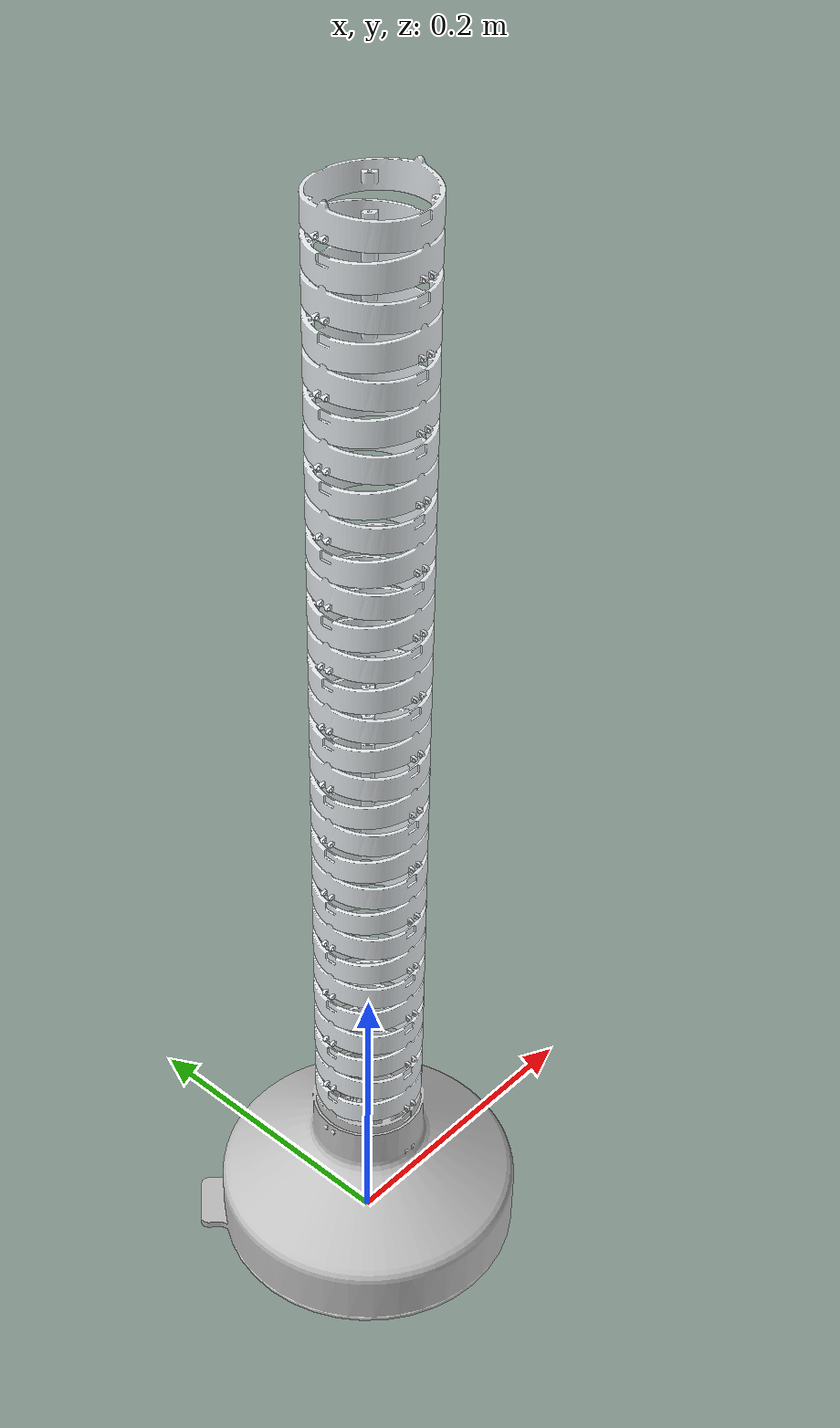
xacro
<?xml version="1.0"?>
<robot name="snake_robot1" xmlns:xacro="http://ros.org/wiki/xacro">
  <xacro:include filename="$(find snake_robot1)/urdf/snake_robot1.xacro" />

  <link name="base_link" />
  <xacro:snake_robot1 parent="base_link" name="snake_robot1" base_joint_type="fixed">
    <origin xyz="0 0 0" rpy="0 0 0"/>
  </xacro:snake_robot1>

</robot>

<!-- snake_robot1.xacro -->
<robot name="snake_robot1" xmlns:xacro="http://ros.org/wiki/xacro">
  <xacro:include filename="$(find snake_robot1)/urdf/base_rail1.xacro" />

  <xacro:macro name="snake_robot1" params="parent *origin name:=snake_robot1 base_joint_type:=prismatic">

    <xacro:base1 parent="${parent}" name="base1" base_joint_type="${base_joint_type}">
      <xacro:insert_block name="origin" />
    </xacro:base1>

    <xacro:rail1 parent="base1_link" name="rail1_1">
      <origin xyz="0 0 0.1235" rpy="0 0 0"/>
    </xacro:rail1>

    <xacro:rail1 parent="rail1_1_link5" name="rail1_2" >
      <origin xyz="0 0 0.021" rpy="0 0 1.57"/>
    </xacro:rail1>

    <xacro:rail1 parent="rail1_2_link5" name="rail1_3" >
      <origin xyz="0 0 0.021" rpy="0 0 1.57"/>
    </xacro:rail1>

    <xacro:rail1 parent="rail1_3_link5" name="rail1_4" >
      <origin xyz="0 0 0.021" rpy="0 0 1.57"/>
    </xacro:rail1>

    <xacro:rail1 parent="rail1_4_link5" name="rail1_5" >
      <origin xyz="0 0 0.021" rpy="0 0 1.57"/>
    </xacro:rail1>

    <xacro:rail1 parent="rail1_5_link5" name="rail1_6" >
      <origin xyz="0 0 0.021" rpy="0 0 1.57"/>
    </xacro:rail1>
  </xacro:macro>

</robot>

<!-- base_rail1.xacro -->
<robot xmlns:xacro="http://www.ros.org/wiki/xacro" name="base_rail1">
    <xacro:macro name="base1" params="parent *origin name:=base base_joint_type:=prismatic">
        <link
            name="${name}_link">
            <visual>
            <origin
                xyz="0 0 0"
                rpy="0 0 0" />
            <geometry>
                <mesh
                filename="package://snake_robot1/meshes/base_link.STL" />
            </geometry>
            <material
                name="">
                <color
                rgba="0.75294 0.75294 0.75294 1" />
            </material>
            </visual>
            <collision>
            <origin
                xyz="0 0 0"
                rpy="0 0 0" />
            <geometry>
                <mesh
                filename="package://snake_robot1/meshes/base_link.STL" />
            </geometry>
            </collision>
        </link>
        <joint
        name="${name}_joint"
        type="${base_joint_type}">
        <xacro:insert_block name="origin" />
        <parent
            link="${parent}" />
        <child
            link="${name}_link" />
        <axis
            xyz="0 0 1" />
        <limit
        lower="-0.5"
        upper="0.5"
        effort="0"
        velocity="0" />
        </joint>
    </xacro:macro>

    <xacro:macro name="rail1" params="parent *origin name:=rail">
        <link
        name="${name}_link1">
        <inertial>
        <origin
            xyz="7.2882E-09 3.4329E-09 0.010539"
            rpy="0 0 0" />
        <mass
            value="0.024744" />
        <inertia
            ixx="1.4926E-05"
            ixy="-1.6133E-09"
            ixz="2.3902E-13"
            iyy="1.4062E-05"
            iyz="-9.0592E-13"
            izz="2.7906E-05" />
        </inertial>
        <visual>
        <origin
            xyz="0 0 0"
            rpy="0 0 0" />
        <geometry>
            <mesh
            filename="package://snake_robot1/meshes/link1.STL" />
        </geometry>
        <material
            name="">
            <color
            rgba="0.89804 0.91765 0.92941 1" />
        </material>
        </visual>
        <collision>
        <origin
            xyz="0 0 0"
            rpy="0 0 0" />
        <geometry>
            <mesh
            filename="package://snake_robot1/meshes/link1.STL" />
        </geometry>
        </collision>
    </link>
    <joint
        name="${name}_joint1"
        type="revolute">
        <xacro:insert_block name="origin" />
        <parent
        link="${parent}" />
        <child
        link="${name}_link1" />
        <axis
        xyz="-1 0 0" />
        <limit
        lower="-0.17"
        upper="0.17"
        effort="0"
        velocity="0" />
    </joint>
    <link
        name="${name}_link2">
        <inertial>
        <origin
            xyz="-3.433E-09 7.2882E-09 0.010539"
            rpy="0 0 0" />
        <mass
            value="0.024744" />
        <inertia
            ixx="1.4062E-05"
            ixy="1.6133E-09"
            ixz="9.0592E-13"
            iyy="1.4926E-05"
            iyz="2.3902E-13"
            izz="2.7906E-05" />
        </inertial>
        <visual>
        <origin
            xyz="0 0 0"
            rpy="0 0 0" />
        <geometry>
            <mesh
            filename="package://snake_robot1/meshes/link2.STL" />
        </geometry>
        <material
            name="">
            <color
            rgba="0.89804 0.91765 0.92941 1" />
        </material>
        </visual>
        <collision>
        <origin
            xyz="0 0 0"
            rpy="0 0 0" />
        <geometry>
            <mesh
            filename="package://snake_robot1/meshes/link2.STL" />
        </geometry>
        </collision>
    </link>
    <joint
        name="${name}_joint2"
        type="revolute">
        <origin
        xyz="0 0 0.021"
        rpy="0 0 0" />
        <parent
        link="${name}_link1" />
        <child
        link="${name}_link2" />
        <axis
        xyz="0 -1 0" />
        <limit
        lower="-0.17"
        upper="0.17"
        effort="0"
        velocity="0" />
    </joint>
    <link
        name="${name}_link3">
        <inertial>
        <origin
            xyz="7.2882E-09 3.4329E-09 0.010539"
            rpy="0 0 0" />
        <mass
            value="0.024744" />
        <inertia
            ixx="1.4926E-05"
            ixy="-1.6133E-09"
            ixz="2.3902E-13"
            iyy="1.4062E-05"
            iyz="-9.0592E-13"
            izz="2.7906E-05" />
        </inertial>
        <visual>
        <origin
            xyz="0 0 0"
            rpy="0 0 0" />
        <geometry>
            <mesh
            filename="package://snake_robot1/meshes/link3.STL" />
        </geometry>
        <material
            name="">
            <color
            rgba="0.89804 0.91765 0.92941 1" />
        </material>
        </visual>
        <collision>
        <origin
            xyz="0 0 0"
            rpy="0 0 0" />
        <geometry>
            <mesh
            filename="package://snake_robot1/meshes/link3.STL" />
        </geometry>
        </collision>
    </link>
    <joint
        name="${name}_joint3"
        type="revolute">
        <origin
        xyz="0 0 0.021"
        rpy="0 0 0" />
        <parent
        link="${name}_link2" />
        <child
        link="${name}_link3" />
        <axis
        xyz="1 0 0" />
        <limit
        lower="-0.17"
        upper="0.17"
        effort="0"
        velocity="0" />
    </joint>
    <link
        name="${name}_link4">
        <inertial>
        <origin
            xyz="-3.433E-09 7.2882E-09 0.010539"
            rpy="0 0 0" />
        <mass
            value="0.024744" />
        <inertia
            ixx="1.4062E-05"
            ixy="1.6133E-09"
            ixz="9.0592E-13"
            iyy="1.4926E-05"
            iyz="2.3902E-13"
            izz="2.7906E-05" />
        </inertial>
        <visual>
        <origin
            xyz="0 0 0"
            rpy="0 0 0" />
        <geometry>
            <mesh
            filename="package://snake_robot1/meshes/link4.STL" />
        </geometry>
        <material
            name="">
            <color
            rgba="0.89804 0.91765 0.92941 1" />
        </material>
        </visual>
        <collision>
        <origin
            xyz="0 0 0"
            rpy="0 0 0" />
        <geometry>
            <mesh
            filename="package://snake_robot1/meshes/link4.STL" />
        </geometry>
        </collision>
    </link>
    <joint
        name="${name}_joint4"
        type="revolute">
        <origin
        xyz="0 0 0.021"
        rpy="0 0 0" />
        <parent
        link="${name}_link3" />
        <child
        link="${name}_link4" />
        <axis
        xyz="0 -1 0" />
        <limit
        lower="-0.17"
        upper="0.17"
        effort="0"
        velocity="0" />
    </joint>
    <link
        name="${name}_link5">
        <inertial>
        <origin
            xyz="7.2882E-09 3.4329E-09 0.010539"
            rpy="0 0 0" />
        <mass
            value="0.024744" />
        <inertia
            ixx="1.4926E-05"
            ixy="-1.6133E-09"
            ixz="2.3902E-13"
            iyy="1.4062E-05"
            iyz="-9.0592E-13"
            izz="2.7906E-05" />
        </inertial>
        <visual>
        <origin
            xyz="0 0 0"
            rpy="0 0 0" />
        <geometry>
            <mesh
            filename="package://snake_robot1/meshes/link5.STL" />
        </geometry>
        <material
            name="">
            <color
            rgba="0.89804 0.91765 0.92941 1" />
        </material>
        </visual>
        <collision>
        <origin
            xyz="0 0 0"
            rpy="0 0 0" />
        <geometry>
            <mesh
            filename="package://snake_robot1/meshes/link5.STL" />
        </geometry>
        </collision>
    </link>
    <joint
        name="${name}_joint5"
        type="revolute">
        <origin
        xyz="0 0 0.021"
        rpy="0 0 0" />
        <parent
        link="${name}_link4" />
        <child
        link="${name}_link5" />
        <axis
        xyz="1 0 0" />
        <limit
        lower="-0.17"
        upper="0.17"
        effort="0"
        velocity="0" />
        </joint>
    </xacro:macro>
</robot>
